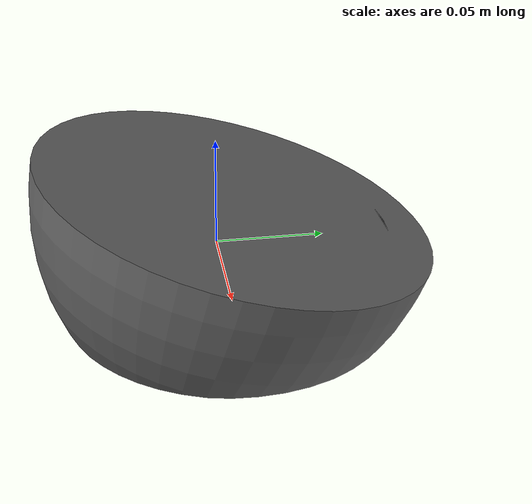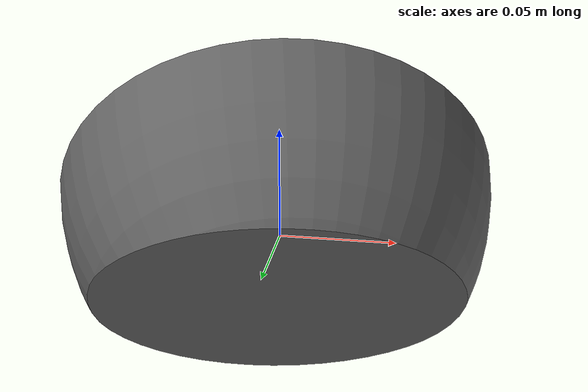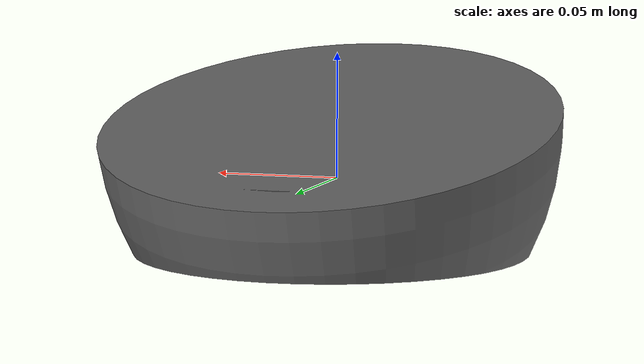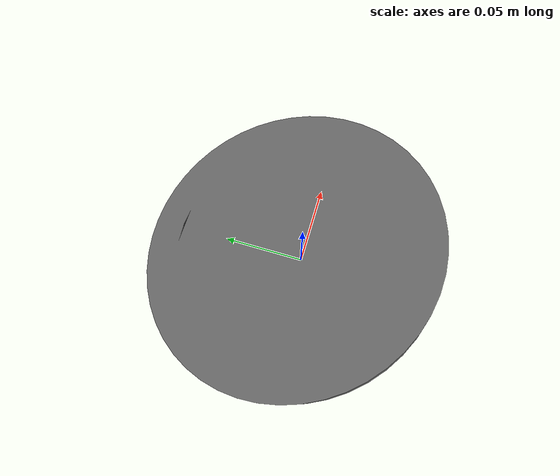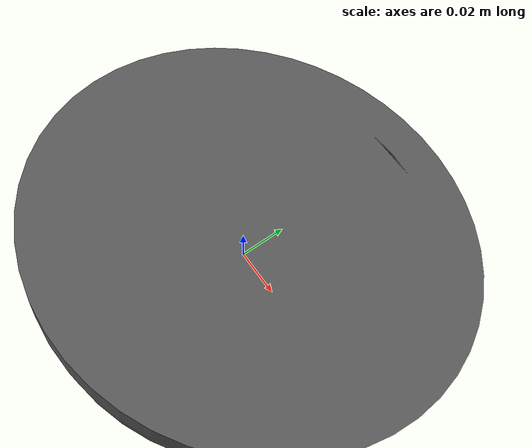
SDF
<?xml version="1.0" ?>
<sdf version="1.5">
  <model name="jibo">

    <link name="base_link">
      <pose>0 0 0 0 0 0</pose>
      <inertial>
        <inertia>
          <ixx>0.002025</ixx>
          <ixy>0</ixy>
          <ixz>0</ixz>
          <iyy>0.002025</iyy>
          <iyz>0</iyz>
          <izz>0.0016</izz>
        </inertia>
        <mass>0.5</mass>
      </inertial>
      <collision name="collision">
        <pose>0 0 0 0 0 0</pose>
        <geometry>
          <cylinder>
            <radius>0.08</radius>
            <length>0.012</length>
          </cylinder>
        </geometry>
        <surface>
          <friction>
            <ode>
              <mu>10</mu>
              <mu2>10</mu2>
              <fdir1>0 0 0</fdir1>
              <slip1>0</slip1>
              <slip2>0</slip2>
            </ode>
          </friction>
        </surface>
      </collision>
      <visual name="visual">
        <pose>0 0 0 0 0 0</pose>
        <geometry>
          <mesh>
            <uri>model://jibo/meshes/jibo_final_parts_base.dae</uri>
          </mesh>
        </geometry>
      </visual>
    </link>

    <link name="waist_link">
      <pose>0 0 0 0 0 0</pose>
      <inertial>
        <inertia>
          <ixx>0.0011625</ixx>
          <ixy>0</ixy>
          <ixz>0</ixz>
          <iyy>0.0011625</iyy>
          <iyz>0</iyz>
          <izz>0.002025</izz>
        </inertia>
        <mass>0.5</mass>
      </inertial>
      <collision name="collision">
        <pose>0 0 0 0 0 0</pose>
        <geometry>
          <cylinder>
            <radius>0.09</radius>
            <length>0.06</length>
          </cylinder>
        </geometry>
        <surface>
          <friction>
            <ode>
              <mu>10</mu>
              <mu2>10</mu2>
              <fdir1>0 0 0</fdir1>
              <slip1>0</slip1>
              <slip2>0</slip2>
            </ode>
          </friction>
        </surface>
      </collision>
      <visual name="visual">
        <pose>0 0 0 0 0 0</pose>
        <geometry>
          <mesh>
            <uri>model://jibo/meshes/jibo_final_parts_waist.dae</uri>
          </mesh>
        </geometry>
      </visual>
    </link>

    <joint name="base_waist_link" type="revolute">
      <parent>base_link</parent>
      <child>waist_link</child>
      <axis>
        <xyz>0 0 1</xyz>
        <use_parent_model_frame>true</use_parent_model_frame>
      </axis>
    </joint>

  </model>
</sdf>
